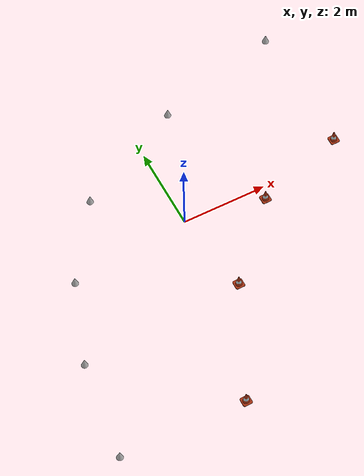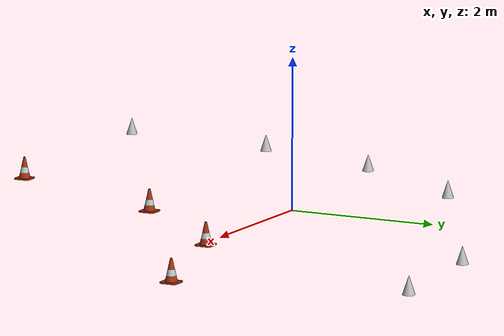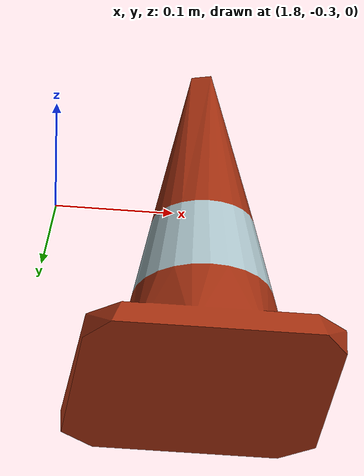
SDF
<?xml version='1.0'?>
<sdf version='1.6'>
  <model name='left_turn'>
    <model name='cone_blue'>
      <link name='link'>
        <collision name='collision'>
          <geometry>
            <mesh>
              <uri>model://cone_blue/meshes/cone_blue.dae</uri>
            </mesh>
          </geometry>
        </collision>
        <visual name='visual'>
          <geometry>
            <mesh>
              <uri>model://cone_blue/meshes/cone_blue.dae</uri>
            </mesh>
          </geometry>
        </visual>
      </link>
      <pose frame=''>4.01224 3.56439 0.020473 0 -0 0</pose>
    </model>
    <model name='cone_blue_0'>
      <link name='link'>
        <collision name='collision'>
          <geometry>
            <mesh>
              <uri>model://cone_blue/meshes/cone_blue.dae</uri>
            </mesh>
          </geometry>
        </collision>
        <visual name='visual'>
          <geometry>
            <mesh>
              <uri>model://cone_blue/meshes/cone_blue.dae</uri>
            </mesh>
          </geometry>
        </visual>
      </link>
      <pose frame=''>1.07158 2.90676 -0.225207 0 -0 0</pose>
    </model>
    <model name='cone_blue_3'>
      <link name='link'>
        <collision name='collision'>
          <geometry>
            <mesh>
              <uri>model://cone_blue/meshes/cone_blue.dae</uri>
            </mesh>
          </geometry>
        </collision>
        <visual name='visual'>
          <geometry>
            <mesh>
              <uri>model://cone_blue/meshes/cone_blue.dae</uri>
            </mesh>
          </geometry>
        </visual>
      </link>
      <pose frame=''>-1.63633 1.45358 0.020473 0 -0 0</pose>
    </model>
    <model name='cone_blue_4'>
      <link name='link'>
        <collision name='collision'>
          <geometry>
            <mesh>
              <uri>model://cone_blue/meshes/cone_blue.dae</uri>
            </mesh>
          </geometry>
        </collision>
        <visual name='visual'>
          <geometry>
            <mesh>
              <uri>model://cone_blue/meshes/cone_blue.dae</uri>
            </mesh>
          </geometry>
        </visual>
      </link>
      <pose frame=''>-2.87212 -0.307147 0.020473 0 -0 0</pose>
    </model>
    <model name='cone_blue_5'>
      <link name='link'>
        <collision name='collision'>
          <geometry>
            <mesh>
              <uri>model://cone_blue/meshes/cone_blue.dae</uri>
            </mesh>
          </geometry>
        </collision>
        <visual name='visual'>
          <geometry>
            <mesh>
              <uri>model://cone_blue/meshes/cone_blue.dae</uri>
            </mesh>
          </geometry>
        </visual>
      </link>
      <pose frame=''>-3.90319 -4.54641 0.020473 0 -0 0</pose>
    </model>
    <model name='cone_blue_6'>
      <link name='link'>
        <collision name='collision'>
          <geometry>
            <mesh>
              <uri>model://cone_blue/meshes/cone_blue.dae</uri>
            </mesh>
          </geometry>
        </collision>
        <visual name='visual'>
          <geometry>
            <mesh>
              <uri>model://cone_blue/meshes/cone_blue.dae</uri>
            </mesh>
          </geometry>
        </visual>
      </link>
      <pose frame=''>-3.58525 -2.23325 0.020473 0 -0 0</pose>
    </model>-->
    <model name='cone_red'>
      <link name='link'>
        <collision name='collision'>
          <geometry>
            <mesh>
              <uri>model://cone_red/meshes/cone_red.dae</uri>
            </mesh>
          </geometry>
        </collision>
        <visual name='visual'>
          <geometry>
            <mesh>
              <uri>model://cone_red/meshes/cone_red.dae</uri>
            </mesh>
          </geometry>
        </visual>
      </link>
      <pose frame=''>4.09681 0.453585 0.020473 0 -0 0</pose>
    </model>
    <model name='cone_red_0'>
      <link name='link'>
        <collision name='collision'>
          <geometry>
            <mesh>
              <uri>model://cone_red/meshes/cone_red.dae</uri>
            </mesh>
          </geometry>
        </collision>
        <visual name='visual'>
          <geometry>
            <mesh>
              <uri>model://cone_red/meshes/cone_red.dae</uri>
            </mesh>
          </geometry>
        </visual>
      </link>
      <pose frame=''>1.9348 -0.231588 0.020473 0 -0 0</pose>
    </model>
    <model name='cone_red_1'>
      <link name='link'>
        <collision name='collision'>
          <geometry>
            <mesh>
              <uri>model://cone_red/meshes/cone_red.dae</uri>
            </mesh>
          </geometry>
        </collision>
        <visual name='visual'>
          <geometry>
            <mesh>
              <uri>model://cone_red/meshes/cone_red.dae</uri>
            </mesh>
          </geometry>
        </visual>
      </link>
      <pose frame=''>-0.900464 -4.54641 0.020473 0 -0 0</pose>
    </model>
    <model name='cone_red_2'>
      <link name='link'>
        <collision name='collision'>
          <geometry>
            <mesh>
              <uri>model://cone_red/meshes/cone_red.dae</uri>
            </mesh>
          </geometry>
        </collision>
        <visual name='visual'>
          <geometry>
            <mesh>
              <uri>model://cone_red/meshes/cone_red.dae</uri>
            </mesh>
          </geometry>
        </visual>
      </link>
      <pose frame=''>0.33919 -1.92026 0.020473 0 -0 0</pose>
    </model>
    <static>0</static>
    <allow_auto_disable>1</allow_auto_disable>
  </model>
</sdf>
